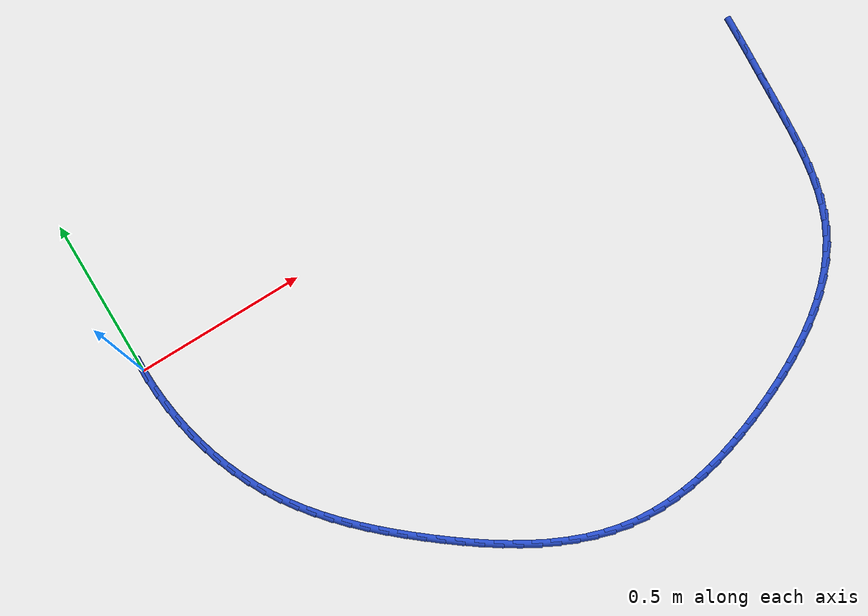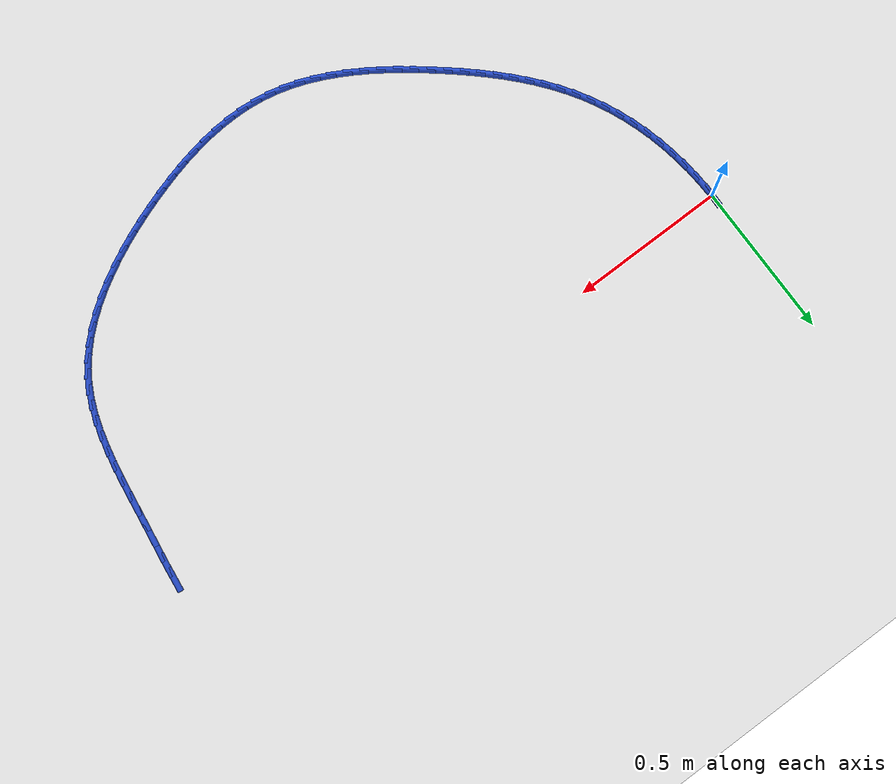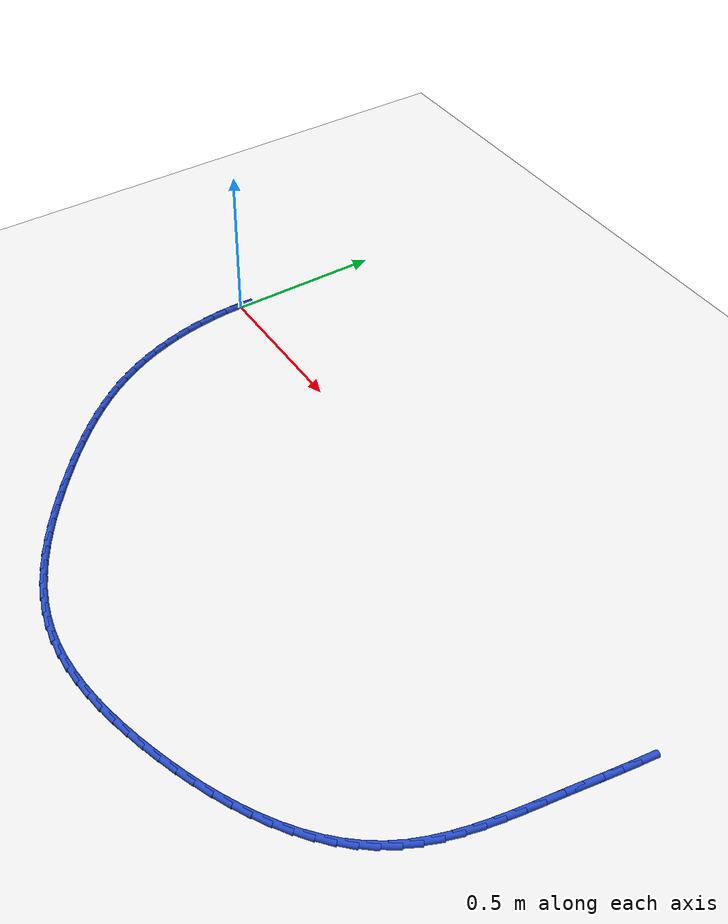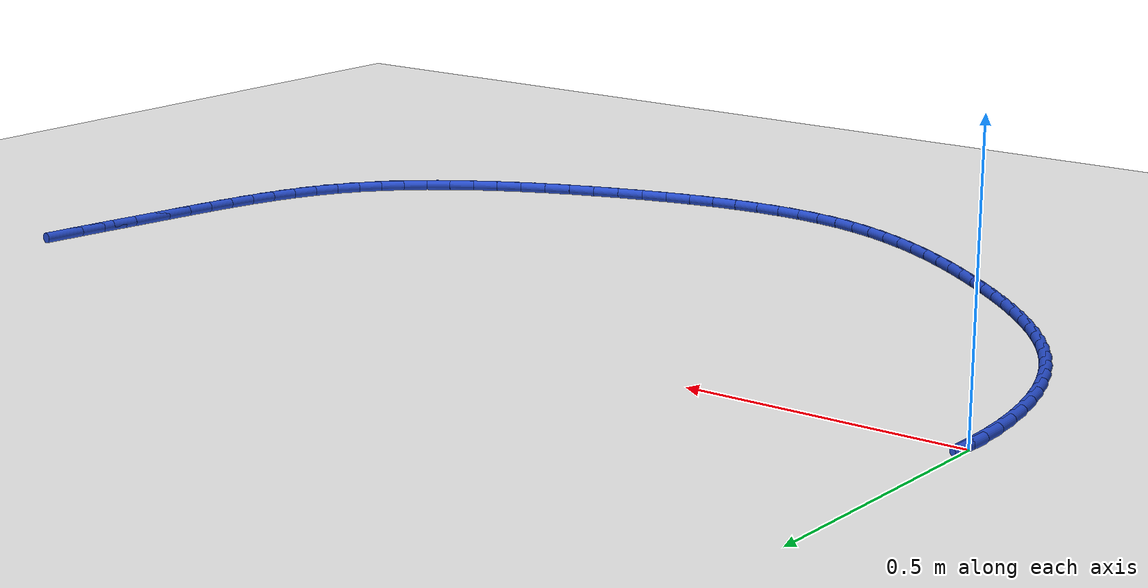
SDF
<sdf version="1.6">
 <world name="default">
  <model name="ground_plane">
   <static>1</static>
   <link name="link">
    <collision name="collision">
     <geometry><plane><normal>0 0 1</normal><size>100 100</size></plane></geometry>
     <surface><friction><ode><mu>100</mu><mu2>50</mu2></ode></friction></surface>
    </collision>
    <visual name="visual">
     <cast_shadows>0</cast_shadows>
     <geometry><plane><normal>0 0 1</normal><size>100 100</size></plane></geometry>
     <material>
      <script><uri>file://media/materials/scripts/gazebo.material</uri><name>Gazebo/WhiteGlow</name></script>
     </material>
    </visual>
   </link>
  </model>
  <model name="line">
   <link name="link_0">
    <pose>1.0408340855860843e-17 -2.7755575615628914e-17 0.01 0 1.57 1.549259764587161</pose>
    <collision name="collision">
     <geometry><cylinder><radius>0.01</radius><length>0.08</length></cylinder></geometry>
    </collision>
    <visual name="visual">
     <material>
      <script><name>Gazebo/Blue</name><uri>file://media/materials/scripts/gazebo.material</uri></script>
     </material>
     <geometry><cylinder><radius>0.01</radius><length>0.08</length></cylinder></geometry>
    </visual>
   </link>
   <link name="link_66">
    <pose>2.011431086003115 -0.046577962258866366 0.01 0 1.57 1.4354837412218688</pose>
    <collision name="collision">
     <geometry><cylinder><radius>0.01</radius><length>0.08</length></cylinder></geometry>
    </collision>
    <visual name="visual">
     <material>
      <script><name>Gazebo/Blue</name><uri>file://media/materials/scripts/gazebo.material</uri></script>
     </material>
     <geometry><cylinder><radius>0.01</radius><length>0.08</length></cylinder></geometry>
    </visual>
   </link>
   <link name="link_67">
    <pose>2.0045510834038995 -0.09711251847666534 0.01 0 1.57 1.4215904638800487</pose>
    <collision name="collision">
     <geometry><cylinder><radius>0.01</radius><length>0.08</length></cylinder></geometry>
    </collision>
    <visual name="visual">
     <material>
      <script><name>Gazebo/Blue</name><uri>file://media/materials/scripts/gazebo.material</uri></script>
     </material>
     <geometry><cylinder><radius>0.01</radius><length>0.08</length></cylinder></geometry>
    </visual>
   </link>
   <link name="link_68">
    <pose>1.9969145668779595 -0.14791322468275478 0.01 0 1.57 1.4148295819701282</pose>
    <collision name="collision">
     <geometry><cylinder><radius>0.01</radius><length>0.08</length></cylinder></geometry>
    </collision>
    <visual name="visual">
     <material>
      <script><name>Gazebo/Blue</name><uri>file://media/materials/scripts/gazebo.material</uri></script>
     </material>
     <geometry><cylinder><radius>0.01</radius><length>0.08</length></cylinder></geometry>
    </visual>
   </link>
   <link name="link_69">
    <pose>1.9888838382791163 -0.19898504298723452 0.01 0 1.57 1.4150481621611293</pose>
    <collision name="collision">
     <geometry><cylinder><radius>0.01</radius><length>0.08</length></cylinder></geometry>
    </collision>
    <visual name="visual">
     <material>
      <script><name>Gazebo/Blue</name><uri>file://media/materials/scripts/gazebo.material</uri></script>
     </material>
     <geometry><cylinder><radius>0.01</radius><length>0.08</length></cylinder></geometry>
    </visual>
   </link>
   <link name="link_70">
    <pose>1.9808211994611904 -0.2503329355002043 0.01 0 1.57 1.4200558761464233</pose>
    <collision name="collision">
     <geometry><cylinder><radius>0.01</radius><length>0.08</length></cylinder></geometry>
    </collision>
    <visual name="visual">
     <material>
      <script><name>Gazebo/Blue</name><uri>file://media/materials/scripts/gazebo.material</uri></script>
     </material>
     <geometry><cylinder><radius>0.01</radius><length>0.08</length></cylinder></geometry>
    </visual>
   </link>
   <link name="link_71">
    <pose>1.97298505568224 -0.301922942708172 0.01 0 1.57 1.4184205826307337</pose>
    <collision name="collision">
     <geometry><cylinder><radius>0.01</radius><length>0.08</length></cylinder></geometry>
    </collision>
    <visual name="visual">
     <material>
      <script><name>Gazebo/Blue</name><uri>file://media/materials/scripts/gazebo.material</uri></script>
     </material>
     <geometry><cylinder><radius>0.01</radius><length>0.08</length></cylinder></geometry>
    </visual>
   </link>
   <link name="link_72">
    <pose>1.9650634271296665 -0.3535074280964147 0.01 0 1.57 1.4062029908710107</pose>
    <collision name="collision">
     <geometry><cylinder><radius>0.01</radius><length>0.08</length></cylinder></geometry>
    </collision>
    <visual name="visual">
     <material>
      <script><name>Gazebo/Blue</name><uri>file://media/materials/scripts/gazebo.material</uri></script>
     </material>
     <geometry><cylinder><radius>0.01</radius><length>0.08</length></cylinder></geometry>
    </visual>
   </link>
   <link name="link_73">
    <pose>1.9565496172995174 -0.40476581060653355 0.01 0 1.57 1.3830983819406206</pose>
    <collision name="collision">
     <geometry><cylinder><radius>0.01</radius><length>0.08</length></cylinder></geometry>
    </collision>
    <visual name="visual">
     <material>
      <script><name>Gazebo/Blue</name><uri>file://media/materials/scripts/gazebo.material</uri></script>
     </material>
     <geometry><cylinder><radius>0.01</radius><length>0.08</length></cylinder></geometry>
    </visual>
   </link>
   <link name="link_74">
    <pose>1.9469367625883067 -0.4553774465814932 0.01 0 1.57 1.3485463024235167</pose>
    <collision name="collision">
     <geometry><cylinder><radius>0.01</radius><length>0.08</length></cylinder></geometry>
    </collision>
    <visual name="visual">
     <material>
      <script><name>Gazebo/Blue</name><uri>file://media/materials/scripts/gazebo.material</uri></script>
     </material>
     <geometry><cylinder><radius>0.01</radius><length>0.08</length></cylinder></geometry>
    </visual>
   </link>
   <link name="link_75">
    <pose>1.9357179993925506 -0.5050216923642599 0.01 0 1.57 1.3017846822365258</pose>
    <collision name="collision">
     <geometry><cylinder><radius>0.01</radius><length>0.08</length></cylinder></geometry>
    </collision>
    <visual name="visual">
     <material>
      <script><name>Gazebo/Blue</name><uri>file://media/materials/scripts/gazebo.material</uri></script>
     </material>
     <geometry><cylinder><radius>0.01</radius><length>0.08</length></cylinder></geometry>
    </visual>
   </link>
   <link name="link_76">
    <pose>1.9223864641087622 -0.5533779042977969 0.01 0 1.57 1.2419650803498452</pose>
    <collision name="collision">
     <geometry><cylinder><radius>0.01</radius><length>0.08</length></cylinder></geometry>
    </collision>
    <visual name="visual">
     <material>
      <script><name>Gazebo/Blue</name><uri>file://media/materials/scripts/gazebo.material</uri></script>
     </material>
     <geometry><cylinder><radius>0.01</radius><length>0.08</length></cylinder></geometry>
    </visual>
   </link>
   <link name="link_77">
    <pose>1.9064352931334572 -0.6001254387250705 0.01 0 1.57 1.168360182174422</pose>
    <collision name="collision">
     <geometry><cylinder><radius>0.01</radius><length>0.08</length></cylinder></geometry>
    </collision>
    <visual name="visual">
     <material>
      <script><name>Gazebo/Blue</name><uri>file://media/materials/scripts/gazebo.material</uri></script>
     </material>
     <geometry><cylinder><radius>0.01</radius><length>0.08</length></cylinder></geometry>
    </visual>
   </link>
   <link name="link_78">
    <pose>1.8873576228631488 -0.6449436519890461 0.01 0 1.57 1.0806932943296876</pose>
    <collision name="collision">
     <geometry><cylinder><radius>0.01</radius><length>0.08</length></cylinder></geometry>
    </collision>
    <visual name="visual">
     <material>
      <script><name>Gazebo/Blue</name><uri>file://media/materials/scripts/gazebo.material</uri></script>
     </material>
     <geometry><cylinder><radius>0.01</radius><length>0.08</length></cylinder></geometry>
    </visual>
   </link>
   <link name="link_79">
    <pose>1.8646465896943525 -0.6875119004326877 0.01 0 1.57 0.9821860906141977</pose>
    <collision name="collision">
     <geometry><cylinder><radius>0.01</radius><length>0.08</length></cylinder></geometry>
    </collision>
    <visual name="visual">
     <material>
      <script><name>Gazebo/Blue</name><uri>file://media/materials/scripts/gazebo.material</uri></script>
     </material>
     <geometry><cylinder><radius>0.01</radius><length>0.08</length></cylinder></geometry>
    </visual>
   </link>
   <link name="link_80">
    <pose>1.8379093162308844 -0.7275650577733299 0.01 0 1.57 0.8870741500057958</pose>
    <collision name="collision">
     <geometry><cylinder><radius>0.01</radius><length>0.08</length></cylinder></geometry>
    </collision>
    <visual name="visual">
     <material>
      <script><name>Gazebo/Blue</name><uri>file://media/materials/scripts/gazebo.material</uri></script>
     </material>
     <geometry><cylinder><radius>0.01</radius><length>0.08</length></cylinder></geometry>
    </visual>
   </link>
   <link name="link_81">
    <pose>1.8073149317585913 -0.7651117250160423 0.01 0 1.57 0.8001790393626929</pose>
    <collision name="collision">
     <geometry><cylinder><radius>0.01</radius><length>0.08</length></cylinder></geometry>
    </collision>
    <visual name="visual">
     <material>
      <script><name>Gazebo/Blue</name><uri>file://media/materials/scripts/gazebo.material</uri></script>
     </material>
     <geometry><cylinder><radius>0.01</radius><length>0.08</length></cylinder></geometry>
    </visual>
   </link>
   <link name="link_82">
    <pose>1.7732054757314637 -0.800244719658085 0.01 0 1.57 0.7217094931256816</pose>
    <collision name="collision">
     <geometry><cylinder><radius>0.01</radius><length>0.08</length></cylinder></geometry>
    </collision>
    <visual name="visual">
     <material>
      <script><name>Gazebo/Blue</name><uri>file://media/materials/scripts/gazebo.material</uri></script>
     </material>
     <geometry><cylinder><radius>0.01</radius><length>0.08</length></cylinder></geometry>
    </visual>
   </link>
   <link name="link_83">
    <pose>1.7359230351436206 -0.8330568823513015 0.01 0 1.57 0.6514177739917495</pose>
    <collision name="collision">
     <geometry><cylinder><radius>0.01</radius><length>0.08</length></cylinder></geometry>
    </collision>
    <visual name="visual">
     <material>
      <script><name>Gazebo/Blue</name><uri>file://media/materials/scripts/gazebo.material</uri></script>
     </material>
     <geometry><cylinder><radius>0.01</radius><length>0.08</length></cylinder></geometry>
    </visual>
   </link>
   <link name="link_84">
    <pose>1.6958096969891827 -0.8636410537475342 0.01 0 1.57 0.5887755396727937</pose>
    <collision name="collision">
     <geometry><cylinder><radius>0.01</radius><length>0.08</length></cylinder></geometry>
    </collision>
    <visual name="visual">
     <material>
      <script><name>Gazebo/Blue</name><uri>file://media/materials/scripts/gazebo.material</uri></script>
     </material>
     <geometry><cylinder><radius>0.01</radius><length>0.08</length></cylinder></geometry>
    </visual>
   </link>
   <link name="link_85">
    <pose>1.6532075482622695 -0.8920900744986271 0.01 0 1.57 0.5331149355066601</pose>
    <collision name="collision">
     <geometry><cylinder><radius>0.01</radius><length>0.08</length></cylinder></geometry>
    </collision>
    <visual name="visual">
     <material>
      <script><name>Gazebo/Blue</name><uri>file://media/materials/scripts/gazebo.material</uri></script>
     </material>
     <geometry><cylinder><radius>0.01</radius><length>0.08</length></cylinder></geometry>
    </visual>
   </link>
   <link name="link_86">
    <pose>1.6084586759569997 -0.9184967852564236 0.01 0 1.57 0.4837273223416949</pose>
    <collision name="collision">
     <geometry><cylinder><radius>0.01</radius><length>0.08</length></cylinder></geometry>
    </collision>
    <visual name="visual">
     <material>
      <script><name>Gazebo/Blue</name><uri>file://media/materials/scripts/gazebo.material</uri></script>
     </material>
     <geometry><cylinder><radius>0.01</radius><length>0.08</length></cylinder></geometry>
    </visual>
   </link>
   <link name="link_87">
    <pose>1.5619051670674948 -0.9429540266727665 0.01 0 1.57 0.43992477149692116</pose>
    <collision name="collision">
     <geometry><cylinder><radius>0.01</radius><length>0.08</length></cylinder></geometry>
    </collision>
    <visual name="visual">
     <material>
      <script><name>Gazebo/Blue</name><uri>file://media/materials/scripts/gazebo.material</uri></script>
     </material>
     <geometry><cylinder><radius>0.01</radius><length>0.08</length></cylinder></geometry>
    </visual>
   </link>
   <link name="link_88">
    <pose>1.5138891085878736 -0.9655546393994996 0.01 0 1.57 0.40107404408606945</pose>
    <collision name="collision">
     <geometry><cylinder><radius>0.01</radius><length>0.08</length></cylinder></geometry>
    </collision>
    <visual name="visual">
     <material>
      <script><name>Gazebo/Blue</name><uri>file://media/materials/scripts/gazebo.material</uri></script>
     </material>
     <geometry><cylinder><radius>0.01</radius><length>0.08</length></cylinder></geometry>
    </visual>
   </link>
   <link name="link_89">
    <pose>1.464752587512256 -0.9863914640884657 0.01 0 1.57 0.36661244605434873</pose>
    <collision name="collision">
     <geometry><cylinder><radius>0.01</radius><length>0.08</length></cylinder></geometry>
    </collision>
    <visual name="visual">
     <material>
      <script><name>Gazebo/Blue</name><uri>file://media/materials/scripts/gazebo.material</uri></script>
     </material>
     <geometry><cylinder><radius>0.01</radius><length>0.08</length></cylinder></geometry>
    </visual>
   </link>
   <link name="link_90">
    <pose>1.4148376908347615 -1.0055573413915087 0.01 0 1.57 0.33603919537184485</pose>
    <collision name="collision">
     <geometry><cylinder><radius>0.01</radius><length>0.08</length></cylinder></geometry>
    </collision>
    <visual name="visual">
     <material>
      <script><name>Gazebo/Blue</name><uri>file://media/materials/scripts/gazebo.material</uri></script>
     </material>
     <geometry><cylinder><radius>0.01</radius><length>0.08</length></cylinder></geometry>
    </visual>
   </link>
   <link name="link_91">
    <pose>1.3644860578180835 -1.023144495649215 0.01 0 1.57 0.3066664787612793</pose>
    <collision name="collision">
     <geometry><cylinder><radius>0.01</radius><length>0.08</length></cylinder></geometry>
    </collision>
    <visual name="visual">
     <material>
      <script><name>Gazebo/Blue</name><uri>file://media/materials/scripts/gazebo.material</uri></script>
     </material>
     <geometry><cylinder><radius>0.01</radius><length>0.08</length></cylinder></geometry>
    </visual>
   </link>
   <link name="link_92">
    <pose>1.313964672810049 -1.0391423872196357 0.01 0 1.57 0.2733443760411535</pose>
    <collision name="collision">
     <geometry><cylinder><radius>0.01</radius><length>0.08</length></cylinder></geometry>
    </collision>
    <visual name="visual">
     <material>
      <script><name>Gazebo/Blue</name><uri>file://media/materials/scripts/gazebo.material</uri></script>
     </material>
     <geometry><cylinder><radius>0.01</radius><length>0.08</length></cylinder></geometry>
    </visual>
   </link>
   <link name="link_93">
    <pose>1.26338295205415 -1.0533235808157047 0.01 0 1.57 0.2351130483732538</pose>
    <collision name="collision">
     <geometry><cylinder><radius>0.01</radius><length>0.08</length></cylinder></geometry>
    </collision>
    <visual name="visual">
     <material>
      <script><name>Gazebo/Blue</name><uri>file://media/materials/scripts/gazebo.material</uri></script>
     </material>
     <geometry><cylinder><radius>0.01</radius><length>0.08</length></cylinder></geometry>
    </visual>
   </link>
   <link name="link_94">
    <pose>1.2128303198905623 -1.0654331218958397 0.01 0 1.57 0.1915951719850673</pose>
    <collision name="collision">
     <geometry><cylinder><radius>0.01</radius><length>0.08</length></cylinder></geometry>
    </collision>
    <visual name="visual">
     <material>
      <script><name>Gazebo/Blue</name><uri>file://media/materials/scripts/gazebo.material</uri></script>
     </material>
     <geometry><cylinder><radius>0.01</radius><length>0.08</length></cylinder></geometry>
    </visual>
   </link>
   <link name="link_95">
    <pose>1.1623962006594664 -1.0752160559184596 0.01 0 1.57 0.1424082944028237</pose>
    <collision name="collision">
     <geometry><cylinder><radius>0.01</radius><length>0.08</length></cylinder></geometry>
    </collision>
    <visual name="visual">
     <material>
      <script><name>Gazebo/Blue</name><uri>file://media/materials/scripts/gazebo.material</uri></script>
     </material>
     <geometry><cylinder><radius>0.01</radius><length>0.08</length></cylinder></geometry>
    </visual>
   </link>
   <link name="link_96">
    <pose>1.1121700187010388 -1.0824174283419823 0.01 0 1.57 0.0871998866845834</pose>
    <collision name="collision">
     <geometry><cylinder><radius>0.01</radius><length>0.08</length></cylinder></geometry>
    </collision>
    <visual name="visual">
     <material>
      <script><name>Gazebo/Blue</name><uri>file://media/materials/scripts/gazebo.material</uri></script>
     </material>
     <geometry><cylinder><radius>0.01</radius><length>0.08</length></cylinder></geometry>
    </visual>
   </link>
   <link name="link_97">
    <pose>1.062241198355457 -1.0867822846248252 0.01 0 1.57 0.025697477022791456</pose>
    <collision name="collision">
     <geometry><cylinder><radius>0.01</radius><length>0.08</length></cylinder></geometry>
    </collision>
    <visual name="visual">
     <material>
      <script><name>Gazebo/Blue</name><uri>file://media/materials/scripts/gazebo.material</uri></script>
     </material>
     <geometry><cylinder><radius>0.01</radius><length>0.08</length></cylinder></geometry>
    </visual>
   </link>
   <link name="link_98">
    <pose>1.0126991639628988 -1.0880556702254074 0.01 0 1.57 -0.042225061309200604</pose>
    <collision name="collision">
     <geometry><cylinder><radius>0.01</radius><length>0.08</length></cylinder></geometry>
    </collision>
    <visual name="visual">
     <material>
      <script><name>Gazebo/Blue</name><uri>file://media/materials/scripts/gazebo.material</uri></script>
     </material>
     <geometry><cylinder><radius>0.01</radius><length>0.08</length></cylinder></geometry>
    </visual>
   </link>
   <link name="link_99">
    <pose>0.9636333398635417 -1.0859826306021467 0.01 0 1.57 -0.11646838094637793</pose>
    <collision name="collision">
     <geometry><cylinder><radius>0.01</radius><length>0.08</length></cylinder></geometry>
    </collision>
    <visual name="visual">
     <material>
      <script><name>Gazebo/Blue</name><uri>file://media/materials/scripts/gazebo.material</uri></script>
     </material>
     <geometry><cylinder><radius>0.01</radius><length>0.08</length></cylinder></geometry>
    </visual>
   </link>
   <link name="link_100">
    <pose>0.9151331503975637 -1.0803082112134612 0.01 0 1.57 -0.19623894656795896</pose>
    <collision name="collision">
     <geometry><cylinder><radius>0.01</radius><length>0.08</length></cylinder></geometry>
    </collision>
    <visual name="visual">
     <material>
      <script><name>Gazebo/Blue</name><uri>file://media/materials/scripts/gazebo.material</uri></script>
     </material>
     <geometry><cylinder><radius>0.01</radius><length>0.08</length></cylinder></geometry>
    </visual>
   </link>
   <link name="link_101">
    <pose>0.8672855130297393 -1.0707962253162886 0.01 0 1.57 -0.2745921311412874</pose>
    <collision name="collision">
     <geometry><cylinder><radius>0.01</radius><length>0.08</length></cylinder></geometry>
    </collision>
    <visual name="visual">
     <material>
      <script><name>Gazebo/Blue</name><uri>file://media/materials/scripts/gazebo.material</uri></script>
     </material>
     <geometry><cylinder><radius>0.01</radius><length>0.08</length></cylinder></geometry>
    </visual>
   </link>
   <link name="link_102">
    <pose>0.8201367985841568 -1.0575140398191796 0.01 0 1.57 -0.34597657719134517</pose>
    <collision name="collision">
     <geometry><cylinder><radius>0.01</radius><length>0.08</length></cylinder></geometry>
    </collision>
    <visual name="visual">
     <material>
      <script><name>Gazebo/Blue</name><uri>file://media/materials/scripts/gazebo.material</uri></script>
     </material>
     <geometry><cylinder><radius>0.01</radius><length>0.08</length></cylinder></geometry>
    </visual>
   </link>
   <link name="link_103">
    <pose>0.7737005353093539 -1.0407748985657252 0.01 0 1.57 -0.41015189079684544</pose>
    <collision name="collision">
     <geometry><cylinder><radius>0.01</radius><length>0.08</length></cylinder></geometry>
    </collision>
    <visual name="visual">
     <material>
      <script><name>Gazebo/Blue</name><uri>file://media/materials/scripts/gazebo.material</uri></script>
     </material>
     <geometry><cylinder><radius>0.01</radius><length>0.08</length></cylinder></geometry>
    </visual>
   </link>
   <link name="link_104">
    <pose>0.7279893068717571 -1.0208991170420427 0.01 0 1.57 -0.4672928799454036</pose>
    <collision name="collision">
     <geometry><cylinder><radius>0.01</radius><length>0.08</length></cylinder></geometry>
    </collision>
    <visual name="visual">
     <material>
      <script><name>Gazebo/Blue</name><uri>file://media/materials/scripts/gazebo.material</uri></script>
     </material>
     <geometry><cylinder><radius>0.01</radius><length>0.08</length></cylinder></geometry>
    </visual>
   </link>
   <link name="link_105">
    <pose>0.6830156969377937 -0.9982070107342484 0.01 0 1.57 -0.5177403172759301</pose>
    <collision name="collision">
     <geometry><cylinder><radius>0.01</radius><length>0.08</length></cylinder></geometry>
    </collision>
    <visual name="visual">
     <material>
      <script><name>Gazebo/Blue</name><uri>file://media/materials/scripts/gazebo.material</uri></script>
     </material>
     <geometry><cylinder><radius>0.01</radius><length>0.08</length></cylinder></geometry>
    </visual>
   </link>
   <link name="link_106">
    <pose>0.6387922891738909 -0.973018895128459 0.01 0 1.57 -0.5619168519019373</pose>
    <collision name="collision">
     <geometry><cylinder><radius>0.01</radius><length>0.08</length></cylinder></geometry>
    </collision>
    <visual name="visual">
     <material>
      <script><name>Gazebo/Blue</name><uri>file://media/materials/scripts/gazebo.material</uri></script>
     </material>
     <geometry><cylinder><radius>0.01</radius><length>0.08</length></cylinder></geometry>
    </visual>
   </link>
   <link name="link_107">
    <pose>0.5953316672464748 -0.9456550857107904 0.01 0 1.57 -0.6002654222549231</pose>
    <collision name="collision">
     <geometry><cylinder><radius>0.01</radius><length>0.08</length></cylinder></geometry>
    </collision>
    <visual name="visual">
     <material>
      <script><name>Gazebo/Blue</name><uri>file://media/materials/scripts/gazebo.material</uri></script>
     </material>
     <geometry><cylinder><radius>0.01</radius><length>0.08</length></cylinder></geometry>
    </visual>
   </link>
   <link name="link_108">
    <pose>0.5526464148219743 -0.9164358979673601 0.01 0 1.57 -0.6332075513647314</pose>
    <collision name="collision">
     <geometry><cylinder><radius>0.01</radius><length>0.08</length></cylinder></geometry>
    </collision>
    <visual name="visual">
     <material>
      <script><name>Gazebo/Blue</name><uri>file://media/materials/scripts/gazebo.material</uri></script>
     </material>
     <geometry><cylinder><radius>0.01</radius><length>0.08</length></cylinder></geometry>
    </visual>
   </link>
   <link name="link_109">
    <pose>0.5107491155668151 -0.8856816473842839 0.01 0 1.57 -0.6611166872719555</pose>
    <collision name="collision">
     <geometry><cylinder><radius>0.01</radius><length>0.08</length></cylinder></geometry>
    </collision>
    <visual name="visual">
     <material>
      <script><name>Gazebo/Blue</name><uri>file://media/materials/scripts/gazebo.material</uri></script>
     </material>
     <geometry><cylinder><radius>0.01</radius><length>0.08</length></cylinder></geometry>
    </visual>
   </link>
   <link name="link_110">
    <pose>0.4696523531474246 -0.8537126494476786 0.01 0 1.57 -0.6843019996170853</pose>
    <collision name="collision">
     <geometry><cylinder><radius>0.01</radius><length>0.08</length></cylinder></geometry>
    </collision>
    <visual name="visual">
     <material>
      <script><name>Gazebo/Blue</name><uri>file://media/materials/scripts/gazebo.material</uri></script>
     </material>
     <geometry><cylinder><radius>0.01</radius><length>0.08</length></cylinder></geometry>
    </visual>
   </link>
   <link name="link_111">
    <pose>0.4293687185740013 -0.8208492007954602 0.01 0 1.57 -0.7046696895076007</pose>
    <collision name="collision">
     <geometry><cylinder><radius>0.01</radius><length>0.08</length></cylinder></geometry>
    </collision>
    <visual name="visual">
     <material>
      <script><name>Gazebo/Blue</name><uri>file://media/materials/scripts/gazebo.material</uri></script>
     </material>
     <geometry><cylinder><radius>0.01</radius><length>0.08</length></cylinder></geometry>
    </visual>
   </link>
   <link name="link_112">
    <pose>0.3899440392324396 -0.7873262950364008 0.01 0 1.57 -0.7278994296930732</pose>
    <collision name="collision">
     <geometry><cylinder><radius>0.01</radius><length>0.08</length></cylinder></geometry>
    </collision>
    <visual name="visual">
     <material>
      <script><name>Gazebo/Blue</name><uri>file://media/materials/scripts/gazebo.material</uri></script>
     </material>
     <geometry><cylinder><radius>0.01</radius><length>0.08</length></cylinder></geometry>
    </visual>
   </link>
   <link name="link_113">
    <pose>0.35153384526192394 -0.7530973674876483 0.01 0 1.57 -0.7552641910556305</pose>
    <collision name="collision">
     <geometry><cylinder><radius>0.01</radius><length>0.08</length></cylinder></geometry>
    </collision>
    <visual name="visual">
     <material>
      <script><name>Gazebo/Blue</name><uri>file://media/materials/scripts/gazebo.material</uri></script>
     </material>
     <geometry><cylinder><radius>0.01</radius><length>0.08</length></cylinder></geometry>
    </visual>
   </link>
   <link name="link_114">
    <pose>0.31431626890747527 -0.7180578438894214 0.01 0 1.57 -0.7869004621283338</pose>
    <collision name="collision">
     <geometry><cylinder><radius>0.01</radius><length>0.08</length></cylinder></geometry>
    </collision>
    <visual name="visual">
     <material>
      <script><name>Gazebo/Blue</name><uri>file://media/materials/scripts/gazebo.material</uri></script>
     </material>
     <geometry><cylinder><radius>0.01</radius><length>0.08</length></cylinder></geometry>
    </visual>
   </link>
   <link name="link_115">
    <pose>0.2784694424141142 -0.6821031499819378 0.01 0 1.57 -0.8229335577207137</pose>
    <collision name="collision">
     <geometry><cylinder><radius>0.01</radius><length>0.08</length></cylinder></geometry>
    </collision>
    <visual name="visual">
     <material>
      <script><name>Gazebo/Blue</name><uri>file://media/materials/scripts/gazebo.material</uri></script>
     </material>
     <geometry><cylinder><radius>0.01</radius><length>0.08</length></cylinder></geometry>
    </visual>
   </link>
   <link name="link_116">
    <pose>0.24417149802686253 -0.6451287115054163 0.01 0 1.57 -0.863459843620486</pose>
    <collision name="collision">
     <geometry><cylinder><radius>0.01</radius><length>0.08</length></cylinder></geometry>
    </collision>
    <visual name="visual">
     <material>
      <script><name>Gazebo/Blue</name><uri>file://media/materials/scripts/gazebo.material</uri></script>
     </material>
     <geometry><cylinder><radius>0.01</radius><length>0.08</length></cylinder></geometry>
    </visual>
   </link>
   <link name="link_117">
    <pose>0.2116005679907411 -0.6070299542000751 0.01 0 1.57 -0.9085247260410391</pose>
    <collision name="collision">
     <geometry><cylinder><radius>0.01</radius><length>0.08</length></cylinder></geometry>
    </collision>
    <visual name="visual">
     <material>
      <script><name>Gazebo/Blue</name><uri>file://media/materials/scripts/gazebo.material</uri></script>
     </material>
     <geometry><cylinder><radius>0.01</radius><length>0.08</length></cylinder></geometry>
    </visual>
   </link>
   <link name="link_118">
    <pose>0.18093478455077017 -0.5677023038061317 0.01 0 1.57 -0.9580969941549542</pose>
    <collision name="collision">
     <geometry><cylinder><radius>0.01</radius><length>0.08</length></cylinder></geometry>
    </collision>
    <visual name="visual">
     <material>
      <script><name>Gazebo/Blue</name><uri>file://media/materials/scripts/gazebo.material</uri></script>
     </material>
     <geometry><cylinder><radius>0.01</radius><length>0.08</length></cylinder></geometry>
    </visual>
   </link>
   <link name="link_119">
    <pose>0.15235227995197173 -0.5270411860638053 0.01 0 1.57 -1.0120412652009765</pose>
    <collision name="collision">
     <geometry><cylinder><radius>0.01</radius><length>0.08</length></cylinder></geometry>
    </collision>
    <visual name="visual">
     <material>
      <script><name>Gazebo/Blue</name><uri>file://media/materials/scripts/gazebo.material</uri></script>
     </material>
     <geometry><cylinder><radius>0.01</radius><length>0.08</length></cylinder></geometry>
    </visual>
   </link>
   <link name="link_120">
    <pose>0.1260311864393663 -0.4849420267133138 0.01 0 1.57 -1.0699467521342867</pose>
    <collision name="collision">
     <geometry><cylinder><radius>0.01</radius><length>0.08</length></cylinder></geometry>
    </collision>
    <visual name="visual">
     <material>
      <script><name>Gazebo/Blue</name><uri>file://media/materials/scripts/gazebo.material</uri></script>
     </material>
     <geometry><cylinder><radius>0.01</radius><length>0.08</length></cylinder></geometry>
    </visual>
   </link>
   <link name="link_121">
    <pose>0.10214504482676838 -0.4413068894264328 0.01 0 1.57 -1.128637589152564</pose>
    <collision name="collision">
     <geometry><cylinder><radius>0.01</radius><length>0.08</length></cylinder></geometry>
    </collision>
    <visual name="visual">
     <material>
      <script><name>Gazebo/Blue</name><uri>file://media/materials/scripts/gazebo.material</uri></script>
     </material>
     <geometry><cylinder><radius>0.01</radius><length>0.08</length></cylinder></geometry>
    </visual>
   </link>
   <link name="link_122">
    <pose>0.08077618209419699 -0.39616970769038157 0.01 0 1.57 -1.1854864525764461</pose>
    <collision name="collision">
     <geometry><cylinder><radius>0.01</radius><length>0.08</length></cylinder></geometry>
    </collision>
    <visual name="visual">
     <material>
      <script><name>Gazebo/Blue</name><uri>file://media/materials/scripts/gazebo.material</uri></script>
     </material>
     <geometry><cylinder><radius>0.01</radius><length>0.08</length></cylinder></geometry>
    </visual>
   </link>
   <link name="link_123">
    <pose>0.0619230542994413 -0.3496856690015053 0.01 0 1.57 -1.2405431652318704</pose>
    <collision name="collision">
     <geometry><cylinder><radius>0.01</radius><length>0.08</length></cylinder></geometry>
    </collision>
    <visual name="visual">
     <material>
      <script><name>Gazebo/Blue</name><uri>file://media/materials/scripts/gazebo.material</uri></script>
     </material>
     <geometry><cylinder><radius>0.01</radius><length>0.08</length></cylinder></geometry>
    </visual>
   </link>
   <link name="link_124">
    <pose>0.04558099789494234 -0.30201447093718276 0.01 0 1.57 -1.2939829292964886</pose>
    <collision name="collision">
     <geometry><cylinder><radius>0.01</radius><length>0.08</length></cylinder></geometry>
    </collision>
    <visual name="visual">
     <material>
      <script><name>Gazebo/Blue</name><uri>file://media/materials/scripts/gazebo.material</uri></script>
     </material>
     <geometry><cylinder><radius>0.01</radius><length>0.08</length></cylinder></geometry>
    </visual>
   </link>
   <link name="link_125">
    <pose>0.03174534933314028 -0.25331581107479073 0.01 0 1.57 -1.3460001093515708</pose>
    <collision name="collision">
     <geometry><cylinder><radius>0.01</radius><length>0.08</length></cylinder></geometry>
    </collision>
    <visual name="visual">
     <material>
      <script><name>Gazebo/Blue</name><uri>file://media/materials/scripts/gazebo.material</uri></script>
     </material>
     <geometry><cylinder><radius>0.01</radius><length>0.08</length></cylinder></geometry>
    </visual>
   </link>
   <link name="link_126">
    <pose>0.02041144506647544 -0.203749386991706 0.01 0 1.57 -1.396802166807213</pose>
    <collision name="collision">
     <geometry><cylinder><radius>0.01</radius><length>0.08</length></cylinder></geometry>
    </collision>
    <visual name="visual">
     <material>
      <script><name>Gazebo/Blue</name><uri>file://media/materials/scripts/gazebo.material</uri></script>
     </material>
     <geometry><cylinder><radius>0.01</radius><length>0.08</length></cylinder></geometry>
    </visual>
   </link>
   <link name="link_127">
    <pose>0.011574621547388635 -0.15347489626530758 0.01 0 1.57 -1.4466050638340473</pose>
    <collision name="collision">
     <geometry><cylinder><radius>0.01</radius><length>0.08</length></cylinder></geometry>
    </collision>
    <visual name="visual">
     <material>
      <script><name>Gazebo/Blue</name><uri>file://media/materials/scripts/gazebo.material</uri></script>
     </material>
     <geometry><cylinder><radius>0.01</radius><length>0.08</length></cylinder></geometry>
    </visual>
   </link>
   <link name="link_128">
    <pose>0.00523021522832015 -0.10265203647297211 0.01 0 1.57 -1.4956299241158897</pose>
    <collision name="collision">
     <geometry><cylinder><radius>0.01</radius><length>0.08</length></cylinder></geometry>
    </collision>
    <visual name="visual">
     <material>
      <script><name>Gazebo/Blue</name><uri>file://media/materials/scripts/gazebo.material</uri></script>
     </material>
     <geometry><cylinder><radius>0.01</radius><length>0.08</length></cylinder></geometry>
    </visual>
   </link>
   <link name="link_129">
    <pose>0.0013735625617104525 -0.051440505192077136 0.01 0 1.57 -1.5441007053492626</pose>
    <collision name="collision">
     <geometry><cylinder><radius>0.01</radius><length>0.08</length></cylinder></geometry>
    </collision>
    <visual name="visual">
     <material>
      <script><name>Gazebo/Blue</name><uri>file://media/materials/scripts/gazebo.material</uri></script>
     </material>
     <geometry><cylinder><radius>0.01</radius><length>0.08</length></cylinder></geometry>
    </visual>
   </link>
   <link name="link_130">
    <pose>1.0408340855860843e-17 -1.5265566588595902e-16 0.01 0 1.57 1.5493500195922416</pose>
    <collision name="collision">
     <geometry><cylinder><radius>0.01</radius><length>0.08</length></cylinder></geometry>
    </collision>
    <visual name="visual">
     <material>
      <script><name>Gazebo/Blue</name><uri>file://media/materials/scripts/gazebo.material</uri></script>
     </material>
     <geometry><cylinder><radius>0.01</radius><length>0.08</length></cylinder></geometry>
    </visual>
   </link>
  </model>
 </world>
</sdf>
